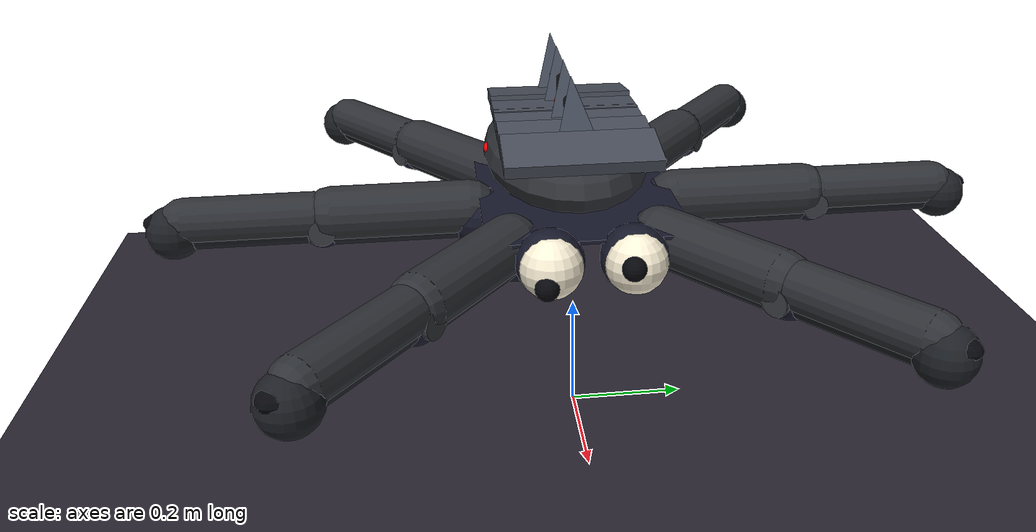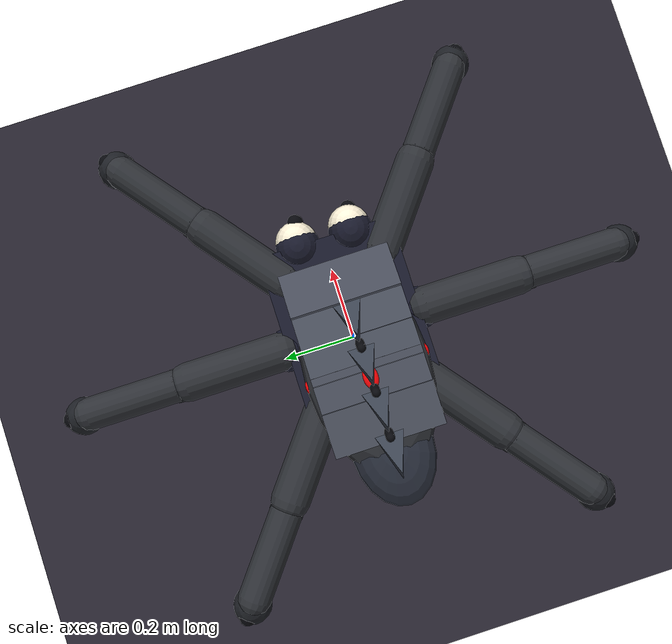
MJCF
<mujoco model="spider">
  <compiler angle="degree" autolimits="true" eulerseq="zyx" />
  <option timestep="0.002" gravity="0 0 -9.81" integrator="implicitfast" />

  <asset>
    <texture name="twilight" type="skybox" builtin="gradient" rgb1="0.055 0.05 0.08" rgb2="0.16 0.145 0.19" width="512" height="3072" />
    <material name="ceramic" rgba="0.76 0.70 0.61 1" specular="0.12" shininess="0.25" />
    <material name="upper_link" rgba="0.64 0.66 0.70 1" />
    <material name="graphite" rgba="0.095 0.10 0.17 1" specular="0.36" shininess="0.45" />
    <material name="vermilion" rgba="0.82 0.36 0.27 1" />
    <material name="eye_white" rgba="0.98 0.94 0.84 1" />
    <material name="marking" rgba="0.58 0.81 0.86 1" emission="0.35" />
  <material name="candidate_life_glow" rgba="0.95 0.015 0.025 1" emission="0.7" specular="0.15" /><material name="candidate_metal" rgba="0.18 0.19 0.21 1" specular="0.75" shininess="0.7" /><mesh name="candidate_armor_fin" scale="0.11 0.035 0.07" vertex="0 -1 0 0 1 0 -1 0 0 -0.8 0 1.3" face="0 2 1 0 1 3 1 2 3 2 0 3" /></asset>

  <visual>
    <headlight ambient="0.20 0.20 0.25" diffuse="0.28 0.28 0.32" specular="0.15 0.15 0.15" />
    <rgba haze="0.09 0.10 0.15 1" />
    <quality shadowsize="4096" />
  </visual>

  <default>
    <joint damping="0.5" armature="0.01" />
    <geom contype="1" conaffinity="1" friction="1 0.5 0.5" density="500" rgba="0.01 0.01 0.015 1" />
  </default>

  <worldbody>
    <light name="main" pos="1 -1 2.5" dir="-0.4 0.4 -1" directional="false" diffuse="0.60 0.55 0.49" specular="0.35 0.30 0.25" />
    <light name="rim" pos="-1 1 1.5" dir="0.5 -0.5 -1" directional="true" diffuse="0.30 0.37 0.55" specular="0.18 0.22 0.32" castshadow="false" />
    <geom name="ground" type="plane" size="12 12 0.1" rgba="0.16 0.145 0.19 1" />

    <body name="torso" pos="0 0 0.38">
      <freejoint name="root" />
      <geom name="torso_geom" type="box" size="0.22 0.16 0.07" material="ceramic" rgba="0.76 0.70 0.61 0" />
      <site name="torso_center" pos="0 0 0" size="0.02" rgba="1 0 0 1" />

      <site name="cowl_visual" type="ellipsoid" pos="-0.018 0 0.074" size="0.185 0.14 0.025" material="graphite" rgba="0.095 0.10 0.17 0" group="2" />

      <site name="shell_seam_visual" type="box" pos="0 0 0.042" size="0.221 0.161 0.003" material="graphite" group="2" />
      <site name="left_socket_visual" type="sphere" pos="0.220 0.065 0.012" size="0.054" material="graphite" group="2" />
      <site name="right_socket_visual" type="sphere" pos="0.220 -0.065 0.012" size="0.054" material="graphite" group="2" />
      <site name="rear_badge_visual" type="box" pos="-0.223 0 0.003" size="0.002 0.025 0.013" material="candidate_life_glow" group="2" rgba="0.95 0.015 0.025 1" />
      <site name="left_eye_visual" type="sphere" pos="0.235 0.065 0.012" size="0.050" material="eye_white" rgba="0.98 0.94 0.84 1" group="2" />
      <site name="right_eye_visual" type="sphere" pos="0.235 -0.065 0.012" size="0.050" material="eye_white" rgba="0.98 0.94 0.84 1" group="2" />
      <site name="left_pupil_visual" type="sphere" pos="0.279 0.054 0.022" size="0.019" material="graphite" rgba="0.025 0.027 0.045 1" group="2" />
      <site name="right_pupil_visual" type="sphere" pos="0.279 -0.076 -0.002" size="0.019" material="graphite" rgba="0.025 0.027 0.045 1" group="2" />
      <site name="spine_visual" type="capsule" fromto="-0.13 0 0.098 0.075 0 0.098" size="0.004" material="candidate_life_glow" rgba="0.95 0.015 0.025 1" group="2" />

      <body name="front_left" pos="0.14 0.11 0" euler="38 0 0">
        <joint name="front_left_coxa" type="hinge" axis="0 0 1" range="-45 45" />
        <joint name="front_left_hip" type="hinge" axis="0 1 0" range="-45 100" />
        <geom name="front_left_thigh" type="capsule" fromto="0 0 0 0.26 0 0" size="0.035" material="candidate_metal" rgba="0.11 0.12 0.14 1" />
        <site name="front_left_joint_visual" type="sphere" size="0.052" material="graphite" rgba="0.095 0.10 0.17 1" group="2" />
        <body name="front_left_shin" pos="0.26 0 0">
          <joint name="front_left_knee" type="hinge" axis="0 1 0" range="-80 140" />

          <site name="front_left_knee_visual" type="sphere" size="0.039" material="graphite" group="2" />
          <site name="front_left_outer_hub_visual" type="cylinder" pos="0 0.034 0" euler="0 0 90" size="0.022 0.006" material="candidate_metal" group="2" rgba="0.23 0.24 0.26 1" />
          <site name="front_left_inner_hub_visual" type="cylinder" pos="0 -0.034 0" euler="0 0 90" size="0.022 0.006" material="candidate_metal" group="2" rgba="0.23 0.24 0.26 1" />
          <site name="front_left_shin_inlay_visual" type="capsule" fromto="0.055 0 0.029 0.175 0 0.029" size="0.004" material="upper_link" group="2" />
          <geom name="front_left_shin_geom" type="capsule" fromto="0 0 0 0.24 0 0" size="0.03" material="candidate_metal" rgba="0.11 0.12 0.14 1" />
          <geom name="front_left_foot" type="sphere" pos="0.24 0 0" size="0.045" material="candidate_metal" rgba="0.11 0.12 0.14 1" />
          <site name="front_left_contact_site" pos="0.24 0 0" size="0.02" />
        <site name="front_left_candidate_shin_shroud" type="capsule" group="2" fromto="0.012 0 0.018 0.222 0 0.018" size="0.039" rgba="0.18 0.19 0.21 1" material="candidate_metal" /><site name="front_left_candidate_distal_point" type="ellipsoid" group="2" pos="0.225 0 0.018" size="0.062 0.033 0.022" rgba="0.025 0.028 0.045 1" material="candidate_metal" /></body>
      <site name="front_left_candidate_thigh_shroud" type="capsule" group="2" fromto="0.015 0 0.018 0.245 0 0.018" size="0.046" rgba="0.18 0.19 0.21 1" material="candidate_metal" /><site name="front_left_candidate_thigh_point" type="ellipsoid" group="2" pos="0.255 0 0.018" size="0.070 0.040 0.025" rgba="0.16 0.18 0.23 1" material="candidate_metal" /></body>

      <body name="front_right" pos="0.14 -0.11 0" euler="-38 0 0">
        <joint name="front_right_coxa" type="hinge" axis="0 0 1" range="-45 45" />
        <joint name="front_right_hip" type="hinge" axis="0 1 0" range="-45 100" />
        <geom name="front_right_thigh" type="capsule" fromto="0 0 0 0.26 0 0" size="0.035" material="candidate_metal" rgba="0.11 0.12 0.14 1" />
        <site name="front_right_joint_visual" type="sphere" size="0.052" material="graphite" rgba="0.095 0.10 0.17 1" group="2" />
        <body name="front_right_shin" pos="0.26 0 0">
          <joint name="front_right_knee" type="hinge" axis="0 1 0" range="-80 140" />

          <site name="front_right_knee_visual" type="sphere" size="0.039" material="graphite" group="2" />
          <site name="front_right_outer_hub_visual" type="cylinder" pos="0 0.034 0" euler="0 0 90" size="0.022 0.006" material="candidate_metal" group="2" rgba="0.23 0.24 0.26 1" />
          <site name="front_right_inner_hub_visual" type="cylinder" pos="0 -0.034 0" euler="0 0 90" size="0.022 0.006" material="candidate_metal" group="2" rgba="0.23 0.24 0.26 1" />
          <site name="front_right_shin_inlay_visual" type="capsule" fromto="0.055 0 0.029 0.175 0 0.029" size="0.004" material="upper_link" group="2" />
          <geom name="front_right_shin_geom" type="capsule" fromto="0 0 0 0.24 0 0" size="0.03" material="candidate_metal" rgba="0.11 0.12 0.14 1" />
          <geom name="front_right_foot" type="sphere" pos="0.24 0 0" size="0.045" material="candidate_metal" rgba="0.11 0.12 0.14 1" />
          <site name="front_right_contact_site" pos="0.24 0 0" size="0.02" />
        <site name="front_right_candidate_shin_shroud" type="capsule" group="2" fromto="0.012 0 0.018 0.222 0 0.018" size="0.039" rgba="0.18 0.19 0.21 1" material="candidate_metal" /><site name="front_right_candidate_distal_point" type="ellipsoid" group="2" pos="0.225 0 0.018" size="0.062 0.033 0.022" rgba="0.025 0.028 0.045 1" material="candidate_metal" /></body>
      <site name="front_right_candidate_thigh_shroud" type="capsule" group="2" fromto="0.015 0 0.018 0.245 0 0.018" size="0.046" rgba="0.18 0.19 0.21 1" material="candidate_metal" /><site name="front_right_candidate_thigh_point" type="ellipsoid" group="2" pos="0.255 0 0.018" size="0.070 0.040 0.025" rgba="0.16 0.18 0.23 1" material="candidate_metal" /></body>

      <body name="middle_left" pos="0 0.16 0" euler="90 0 0">
        <joint name="middle_left_coxa" type="hinge" axis="0 0 1" range="-45 45" />
        <joint name="middle_left_hip" type="hinge" axis="0 1 0" range="-45 100" />
        <geom name="middle_left_thigh" type="capsule" fromto="0 0 0 0.26 0 0" size="0.035" material="candidate_metal" rgba="0.11 0.12 0.14 1" />
        <site name="middle_left_joint_visual" type="sphere" size="0.052" material="graphite" rgba="0.095 0.10 0.17 1" group="2" />
        <body name="middle_left_shin" pos="0.26 0 0">
          <joint name="middle_left_knee" type="hinge" axis="0 1 0" range="-80 140" />

          <site name="middle_left_knee_visual" type="sphere" size="0.039" material="graphite" group="2" />
          <site name="middle_left_outer_hub_visual" type="cylinder" pos="0 0.034 0" euler="0 0 90" size="0.022 0.006" material="candidate_metal" group="2" rgba="0.23 0.24 0.26 1" />
          <site name="middle_left_inner_hub_visual" type="cylinder" pos="0 -0.034 0" euler="0 0 90" size="0.022 0.006" material="candidate_metal" group="2" rgba="0.23 0.24 0.26 1" />
          <site name="middle_left_shin_inlay_visual" type="capsule" fromto="0.055 0 0.029 0.175 0 0.029" size="0.004" material="upper_link" group="2" />
          <geom name="middle_left_shin_geom" type="capsule" fromto="0 0 0 0.24 0 0" size="0.03" material="candidate_metal" rgba="0.11 0.12 0.14 1" />
          <geom name="middle_left_foot" type="sphere" pos="0.24 0 0" size="0.045" material="candidate_metal" rgba="0.11 0.12 0.14 1" />
          <site name="middle_left_contact_site" pos="0.24 0 0" size="0.02" />
        <site name="middle_left_candidate_shin_shroud" type="capsule" group="2" fromto="0.012 0 0.018 0.222 0 0.018" size="0.039" rgba="0.18 0.19 0.21 1" material="candidate_metal" /><site name="middle_left_candidate_distal_point" type="ellipsoid" group="2" pos="0.225 0 0.018" size="0.062 0.033 0.022" rgba="0.025 0.028 0.045 1" material="candidate_metal" /></body>
      <site name="middle_left_candidate_thigh_shroud" type="capsule" group="2" fromto="0.015 0 0.018 0.245 0 0.018" size="0.046" rgba="0.18 0.19 0.21 1" material="candidate_metal" /><site name="middle_left_candidate_thigh_point" type="ellipsoid" group="2" pos="0.255 0 0.018" size="0.070 0.040 0.025" rgba="0.16 0.18 0.23 1" material="candidate_metal" /></body>

      <body name="middle_right" pos="0 -0.16 0" euler="-90 0 0">
        <joint name="middle_right_coxa" type="hinge" axis="0 0 1" range="-45 45" />
        <joint name="middle_right_hip" type="hinge" axis="0 1 0" range="-45 100" />
        <geom name="middle_right_thigh" type="capsule" fromto="0 0 0 0.26 0 0" size="0.035" material="candidate_metal" rgba="0.11 0.12 0.14 1" />
        <site name="middle_right_joint_visual" type="sphere" size="0.052" material="graphite" rgba="0.095 0.10 0.17 1" group="2" />
        <body name="middle_right_shin" pos="0.26 0 0">
          <joint name="middle_right_knee" type="hinge" axis="0 1 0" range="-80 140" />

          <site name="middle_right_knee_visual" type="sphere" size="0.039" material="graphite" group="2" />
          <site name="middle_right_outer_hub_visual" type="cylinder" pos="0 0.034 0" euler="0 0 90" size="0.022 0.006" material="candidate_metal" group="2" rgba="0.23 0.24 0.26 1" />
          <site name="middle_right_inner_hub_visual" type="cylinder" pos="0 -0.034 0" euler="0 0 90" size="0.022 0.006" material="candidate_metal" group="2" rgba="0.23 0.24 0.26 1" />
          <site name="middle_right_shin_inlay_visual" type="capsule" fromto="0.055 0 0.029 0.175 0 0.029" size="0.004" material="upper_link" group="2" />
          <geom name="middle_right_shin_geom" type="capsule" fromto="0 0 0 0.24 0 0" size="0.03" material="candidate_metal" rgba="0.11 0.12 0.14 1" />
          <geom name="middle_right_foot" type="sphere" pos="0.24 0 0" size="0.045" material="candidate_metal" rgba="0.11 0.12 0.14 1" />
          <site name="middle_right_contact_site" pos="0.24 0 0" size="0.02" />
        <site name="middle_right_candidate_shin_shroud" type="capsule" group="2" fromto="0.012 0 0.018 0.222 0 0.018" size="0.039" rgba="0.18 0.19 0.21 1" material="candidate_metal" /><site name="middle_right_candidate_distal_point" type="ellipsoid" group="2" pos="0.225 0 0.018" size="0.062 0.033 0.022" rgba="0.025 0.028 0.045 1" material="candidate_metal" /></body>
      <site name="middle_right_candidate_thigh_shroud" type="capsule" group="2" fromto="0.015 0 0.018 0.245 0 0.018" size="0.046" rgba="0.18 0.19 0.21 1" material="candidate_metal" /><site name="middle_right_candidate_thigh_point" type="ellipsoid" group="2" pos="0.255 0 0.018" size="0.070 0.040 0.025" rgba="0.16 0.18 0.23 1" material="candidate_metal" /></body>

      <body name="rear_left" pos="-0.14 0.11 0" euler="142 0 0">
        <joint name="rear_left_coxa" type="hinge" axis="0 0 1" range="-45 45" />
        <joint name="rear_left_hip" type="hinge" axis="0 1 0" range="-45 100" />
        <geom name="rear_left_thigh" type="capsule" fromto="0 0 0 0.26 0 0" size="0.035" material="candidate_metal" rgba="0.11 0.12 0.14 1" />
        <site name="rear_left_joint_visual" type="sphere" size="0.052" material="graphite" rgba="0.095 0.10 0.17 1" group="2" />
        <body name="rear_left_shin" pos="0.26 0 0">
          <joint name="rear_left_knee" type="hinge" axis="0 1 0" range="-80 140" />

          <site name="rear_left_knee_visual" type="sphere" size="0.039" material="graphite" group="2" />
          <site name="rear_left_outer_hub_visual" type="cylinder" pos="0 0.034 0" euler="0 0 90" size="0.022 0.006" material="candidate_metal" group="2" rgba="0.23 0.24 0.26 1" />
          <site name="rear_left_inner_hub_visual" type="cylinder" pos="0 -0.034 0" euler="0 0 90" size="0.022 0.006" material="candidate_metal" group="2" rgba="0.23 0.24 0.26 1" />
          <site name="rear_left_shin_inlay_visual" type="capsule" fromto="0.055 0 0.029 0.175 0 0.029" size="0.004" material="upper_link" group="2" />
          <geom name="rear_left_shin_geom" type="capsule" fromto="0 0 0 0.24 0 0" size="0.03" material="candidate_metal" rgba="0.11 0.12 0.14 1" />
          <geom name="rear_left_foot" type="sphere" pos="0.24 0 0" size="0.045" material="candidate_metal" rgba="0.11 0.12 0.14 1" />
          <site name="rear_left_contact_site" pos="0.24 0 0" size="0.02" />
        <site name="rear_left_candidate_shin_shroud" type="capsule" group="2" fromto="0.012 0 0.018 0.222 0 0.018" size="0.039" rgba="0.18 0.19 0.21 1" material="candidate_metal" /><site name="rear_left_candidate_distal_point" type="ellipsoid" group="2" pos="0.225 0 0.018" size="0.062 0.033 0.022" rgba="0.025 0.028 0.045 1" material="candidate_metal" /></body>
      <site name="rear_left_candidate_thigh_shroud" type="capsule" group="2" fromto="0.015 0 0.018 0.245 0 0.018" size="0.046" rgba="0.18 0.19 0.21 1" material="candidate_metal" /><site name="rear_left_candidate_thigh_point" type="ellipsoid" group="2" pos="0.255 0 0.018" size="0.070 0.040 0.025" rgba="0.16 0.18 0.23 1" material="candidate_metal" /></body>

      <body name="rear_right" pos="-0.14 -0.11 0" euler="-142 0 0">
        <joint name="rear_right_coxa" type="hinge" axis="0 0 1" range="-45 45" />
        <joint name="rear_right_hip" type="hinge" axis="0 1 0" range="-45 100" />
        <geom name="rear_right_thigh" type="capsule" fromto="0 0 0 0.26 0 0" size="0.035" material="candidate_metal" rgba="0.11 0.12 0.14 1" />
        <site name="rear_right_joint_visual" type="sphere" size="0.052" material="graphite" rgba="0.095 0.10 0.17 1" group="2" />
        <body name="rear_right_shin" pos="0.26 0 0">
          <joint name="rear_right_knee" type="hinge" axis="0 1 0" range="-80 140" />

          <site name="rear_right_knee_visual" type="sphere" size="0.039" material="graphite" group="2" />
          <site name="rear_right_outer_hub_visual" type="cylinder" pos="0 0.034 0" euler="0 0 90" size="0.022 0.006" material="candidate_metal" group="2" rgba="0.23 0.24 0.26 1" />
          <site name="rear_right_inner_hub_visual" type="cylinder" pos="0 -0.034 0" euler="0 0 90" size="0.022 0.006" material="candidate_metal" group="2" rgba="0.23 0.24 0.26 1" />
          <site name="rear_right_shin_inlay_visual" type="capsule" fromto="0.055 0 0.029 0.175 0 0.029" size="0.004" material="upper_link" group="2" />
          <geom name="rear_right_shin_geom" type="capsule" fromto="0 0 0 0.24 0 0" size="0.03" material="candidate_metal" rgba="0.11 0.12 0.14 1" />
          <geom name="rear_right_foot" type="sphere" pos="0.24 0 0" size="0.045" material="candidate_metal" rgba="0.11 0.12 0.14 1" />
          <site name="rear_right_contact_site" pos="0.24 0 0" size="0.02" />
        <site name="rear_right_candidate_shin_shroud" type="capsule" group="2" fromto="0.012 0 0.018 0.222 0 0.018" size="0.039" rgba="0.18 0.19 0.21 1" material="candidate_metal" /><site name="rear_right_candidate_distal_point" type="ellipsoid" group="2" pos="0.225 0 0.018" size="0.062 0.033 0.022" rgba="0.025 0.028 0.045 1" material="candidate_metal" /></body>
      <site name="rear_right_candidate_thigh_shroud" type="capsule" group="2" fromto="0.015 0 0.018 0.245 0 0.018" size="0.046" rgba="0.18 0.19 0.21 1" material="candidate_metal" /><site name="rear_right_candidate_thigh_point" type="ellipsoid" group="2" pos="0.255 0 0.018" size="0.070 0.040 0.025" rgba="0.16 0.18 0.23 1" material="candidate_metal" /></body>
    <site name="candidate_abdomen_visual" type="ellipsoid" group="2" pos="-0.105 0 0.075" size="0.245 0.145 0.075" rgba="0.18 0.19 0.21 1" material="candidate_metal" /><site name="candidate_rear_taper_visual" type="ellipsoid" group="2" pos="-0.285 0 0.072" size="0.135 0.095 0.052" rgba="0.15 0.17 0.22 1" material="candidate_metal" /><site name="candidate_dorsal_plate_0" type="box" group="2" pos="0.1 0 0.142" size="0.050 0.126 0.010" euler="0 12 0" rgba="0.28 0.30 0.35 1" material="candidate_metal" /><site name="candidate_dorsal_plate_1" type="box" group="2" pos="0.025 0 0.142" size="0.050 0.126 0.010" euler="0 7 0" rgba="0.28 0.30 0.35 1" material="candidate_metal" /><site name="candidate_dorsal_plate_2" type="box" group="2" pos="-0.055 0 0.142" size="0.050 0.126 0.010" euler="0 2 0" rgba="0.28 0.30 0.35 1" material="candidate_metal" /><site name="candidate_dorsal_plate_3" type="box" group="2" pos="-0.135 0 0.142" size="0.050 0.126 0.010" euler="0 -3 0" rgba="0.28 0.30 0.35 1" material="candidate_metal" /><site name="candidate_dorsal_plate_4" type="box" group="2" pos="-0.215 0 0.142" size="0.050 0.126 0.010" euler="0 -8 0" rgba="0.28 0.30 0.35 1" material="candidate_metal" /><site name="candidate_dorsal_spike_0" type="capsule" group="2" fromto="-0.02 0 0.105 -0.05500000000000001 0 0.18" size="0.010" rgba="0.035 0.038 0.055 1" material="candidate_metal" /><site name="candidate_dorsal_spike_1" type="capsule" group="2" fromto="-0.12 0 0.1 -0.155 0 0.19" size="0.010" rgba="0.035 0.038 0.055 1" material="candidate_metal" /><site name="candidate_dorsal_spike_2" type="capsule" group="2" fromto="-0.22 0 0.1 -0.255 0 0.17" size="0.010" rgba="0.035 0.038 0.055 1" material="candidate_metal" /><site name="candidate_left_ruby_visual" type="ellipsoid" group="2" pos="-0.10 0.137 0.085" size="0.016 0.008 0.010" material="candidate_life_glow" rgba="0.95 0.015 0.025 1" /><site name="candidate_left_breathing_seam" type="capsule" group="2" fromto="-0.23 0.10960000000000002 0.123 0.09 0.10960000000000002 0.123" size="0.0035" material="candidate_life_glow" rgba="0.95 0.015 0.025 1" /><site name="candidate_right_ruby_visual" type="ellipsoid" group="2" pos="-0.10 -0.137 0.085" size="0.016 0.008 0.010" material="candidate_life_glow" rgba="0.95 0.015 0.025 1" /><site name="candidate_right_breathing_seam" type="capsule" group="2" fromto="-0.23 -0.10960000000000002 0.123 0.09 -0.10960000000000002 0.123" size="0.0035" material="candidate_life_glow" rgba="0.95 0.015 0.025 1" /><site name="candidate_heartbeat_core" type="ellipsoid" group="2" pos="-0.12 0 0.159" size="0.027 0.017 0.008" material="candidate_life_glow" rgba="0.95 0.015 0.025 1" /><light name="candidate_underlight" pos="0 0 -0.075" dir="0 0 -1" diffuse="0.10 0.0015 0.0025" specular="0 0 0" ambient="0 0 0" castshadow="false" cutoff="85" /><site name="googly_enabled" pos="0 0 0" size="0.001" rgba="0 0 0 0" group="5" /><geom name="candidate_fin_0" type="mesh" mesh="candidate_armor_fin" pos="0.06 0 0.14" mass="0" contype="0" conaffinity="0" group="2" rgba="0.24 0.27 0.32 1" /><geom name="candidate_fin_1" type="mesh" mesh="candidate_armor_fin" pos="-0.04 0 0.14" mass="0" contype="0" conaffinity="0" group="2" rgba="0.24 0.27 0.32 1" /><geom name="candidate_fin_2" type="mesh" mesh="candidate_armor_fin" pos="-0.14 0 0.14" mass="0" contype="0" conaffinity="0" group="2" rgba="0.24 0.27 0.32 1" /><geom name="candidate_fin_3" type="mesh" mesh="candidate_armor_fin" pos="-0.24 0 0.14" mass="0" contype="0" conaffinity="0" group="2" rgba="0.24 0.27 0.32 1" /></body>
  </worldbody>

  <actuator>
    <position name="front_left_coxa_motor" joint="front_left_coxa" kp="300" ctrlrange="-0.8 0.8" />
    <position name="front_left_hip_motor" joint="front_left_hip" kp="300" ctrlrange="-0.7854 1.7453" />
    <position name="front_left_knee_motor" joint="front_left_knee" kp="300" ctrlrange="-1.3963 2.4435" />
    <position name="front_right_coxa_motor" joint="front_right_coxa" kp="300" ctrlrange="-0.8 0.8" />
    <position name="front_right_hip_motor" joint="front_right_hip" kp="300" ctrlrange="-0.7854 1.7453" />
    <position name="front_right_knee_motor" joint="front_right_knee" kp="300" ctrlrange="-1.3963 2.4435" />
    <position name="middle_left_coxa_motor" joint="middle_left_coxa" kp="300" ctrlrange="-0.8 0.8" />
    <position name="middle_left_hip_motor" joint="middle_left_hip" kp="300" ctrlrange="-0.7854 1.7453" />
    <position name="middle_left_knee_motor" joint="middle_left_knee" kp="300" ctrlrange="-1.3963 2.4435" />
    <position name="middle_right_coxa_motor" joint="middle_right_coxa" kp="300" ctrlrange="-0.8 0.8" />
    <position name="middle_right_hip_motor" joint="middle_right_hip" kp="300" ctrlrange="-0.7854 1.7453" />
    <position name="middle_right_knee_motor" joint="middle_right_knee" kp="300" ctrlrange="-1.3963 2.4435" />
    <position name="rear_left_coxa_motor" joint="rear_left_coxa" kp="300" ctrlrange="-0.8 0.8" />
    <position name="rear_left_hip_motor" joint="rear_left_hip" kp="300" ctrlrange="-0.7854 1.7453" />
    <position name="rear_left_knee_motor" joint="rear_left_knee" kp="300" ctrlrange="-1.3963 2.4435" />
    <position name="rear_right_coxa_motor" joint="rear_right_coxa" kp="300" ctrlrange="-0.8 0.8" />
    <position name="rear_right_hip_motor" joint="rear_right_hip" kp="300" ctrlrange="-0.7854 1.7453" />
    <position name="rear_right_knee_motor" joint="rear_right_knee" kp="300" ctrlrange="-1.3963 2.4435" />
  </actuator>

  <sensor>
    <framequat name="torso_orientation" objtype="body" objname="torso" />
    <framelinvel name="torso_velocity" objtype="body" objname="torso" />
    <touch name="front_left_contact" site="front_left_contact_site" />
    <touch name="front_right_contact" site="front_right_contact_site" />
    <touch name="middle_left_contact" site="middle_left_contact_site" />
    <touch name="middle_right_contact" site="middle_right_contact_site" />
    <touch name="rear_left_contact" site="rear_left_contact_site" />
    <touch name="rear_right_contact" site="rear_right_contact_site" />
  </sensor>
</mujoco>
